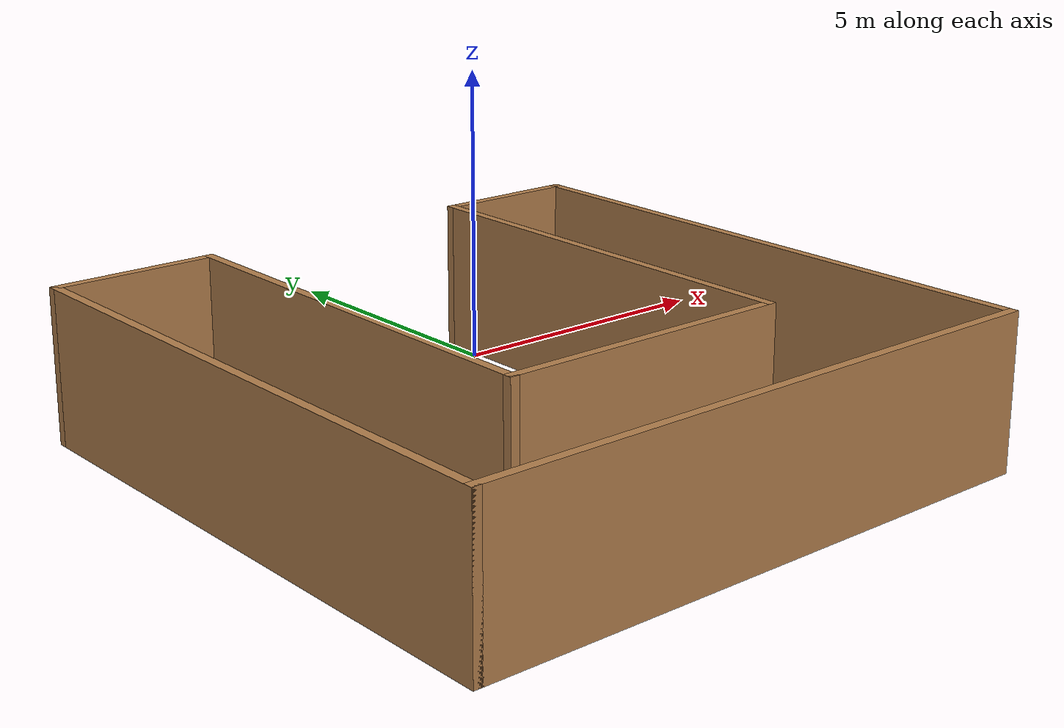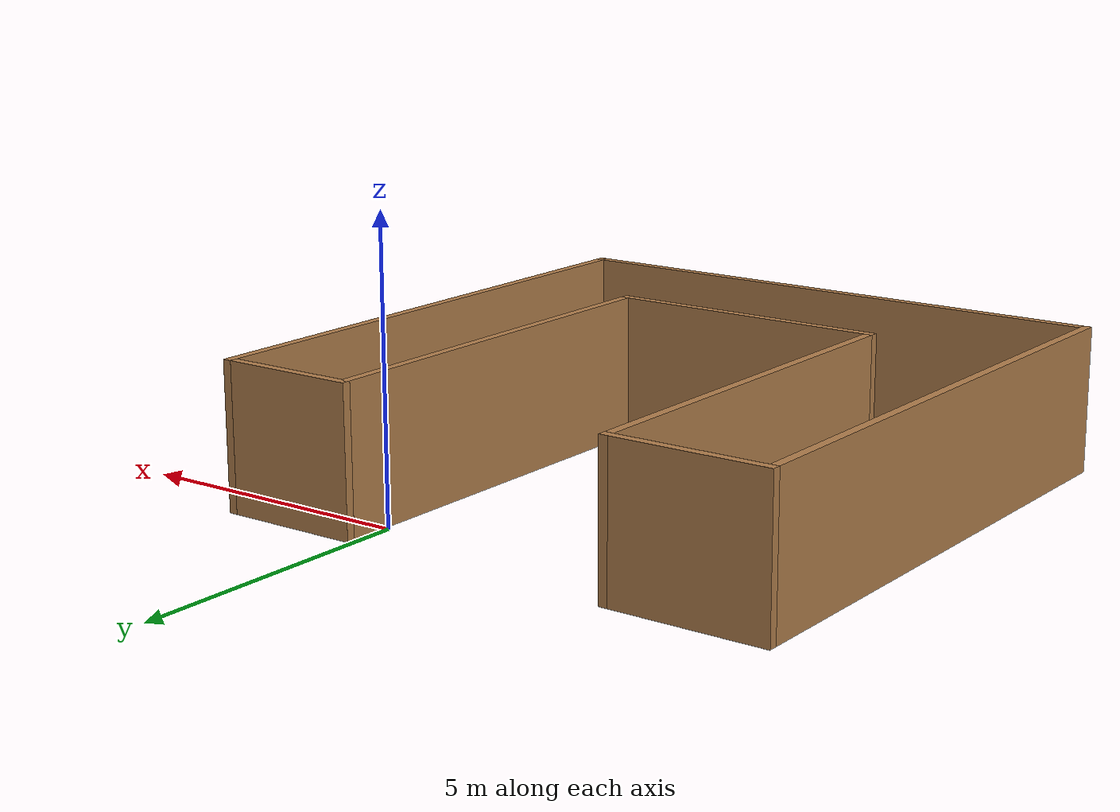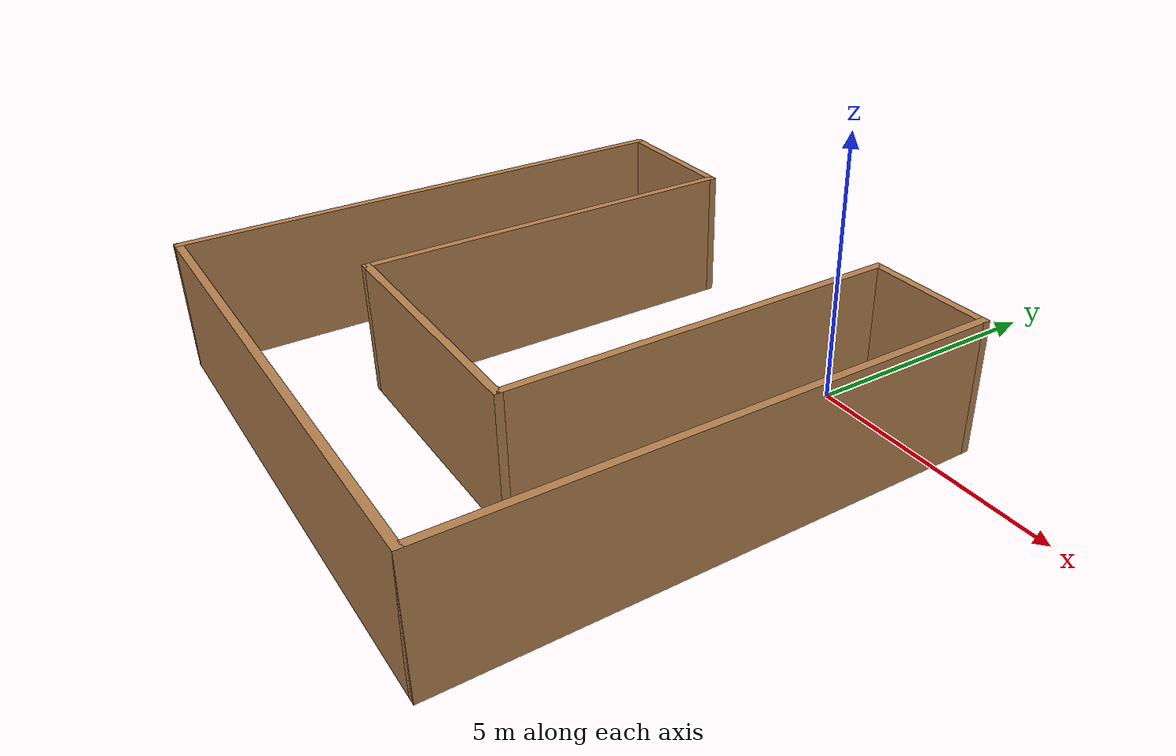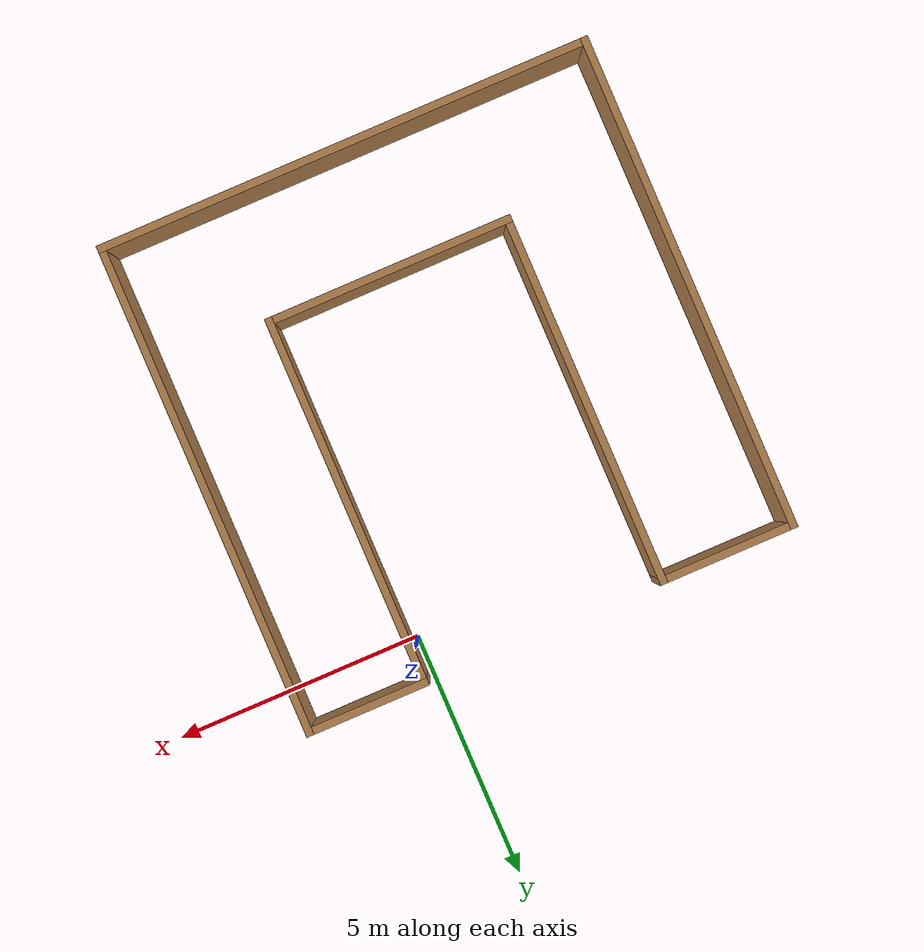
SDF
<?xml version='1.0'?>
<sdf version='1.6'>
  <model name='U-world'>
    <pose frame=''>-2.40806 -4.17008 0 0 -0 0</pose>
    <link name='Wall_0'>
      <collision name='Wall_0_Collision'>
        <geometry>
          <box>
            <size>10 0.15 2.5</size>
          </box>
        </geometry>
        <pose frame=''>0 0 1.25 0 -0 0</pose>
      </collision>
      <visual name='Wall_0_Visual'>
        <pose frame=''>0 0 1.25 0 -0 0</pose>
        <geometry>
          <box>
            <size>10 0.15 2.5</size>
          </box>
        </geometry>
        <material>
          <script>
            <uri>file://media/materials/scripts/gazebo.material</uri>
            <name>Gazebo/Wood</name>
          </script>
          <ambient>0.435294 0.796078 0.67451 1</ambient>
        </material>
        <meta>
          <layer>0</layer>
        </meta>
      </visual>
      <pose frame=''>-4.925 0 0 0 0 -1.5708</pose>
    </link>
    <link name='Wall_1'>
      <collision name='Wall_1_Collision'>
        <geometry>
          <box>
            <size>10 0.15 2.5</size>
          </box>
        </geometry>
        <pose frame=''>0 0 1.25 0 -0 0</pose>
      </collision>
      <visual name='Wall_1_Visual'>
        <pose frame=''>0 0 1.25 0 -0 0</pose>
        <geometry>
          <box>
            <size>10 0.15 2.5</size>
          </box>
        </geometry>
        <material>
          <script>
            <uri>file://media/materials/scripts/gazebo.material</uri>
            <name>Gazebo/Wood</name>
          </script>
          <ambient>0.435294 0.796078 0.67451 1</ambient>
        </material>
        <meta>
          <layer>0</layer>
        </meta>
      </visual>
      <pose frame=''>0 -4.925 0 0 -0 0</pose>
    </link>
    <link name='Wall_2'>
      <collision name='Wall_2_Collision'>
        <geometry>
          <box>
            <size>10 0.15 2.5</size>
          </box>
        </geometry>
        <pose frame=''>0 0 1.25 0 -0 0</pose>
      </collision>
      <visual name='Wall_2_Visual'>
        <pose frame=''>0 0 1.25 0 -0 0</pose>
        <geometry>
          <box>
            <size>10 0.15 2.5</size>
          </box>
        </geometry>
        <material>
          <script>
            <uri>file://media/materials/scripts/gazebo.material</uri>
            <name>Gazebo/Wood</name>
          </script>
          <ambient>0.435294 0.796078 0.67451 1</ambient>
        </material>
        <meta>
          <layer>0</layer>
        </meta>
      </visual>
      <pose frame=''>4.925 0 0 0 -0 1.5708</pose>
    </link>
    <link name='Wall_3'>
      <collision name='Wall_3_Collision'>
        <geometry>
          <box>
            <size>2.5 0.15 2.5</size>
          </box>
        </geometry>
        <pose frame=''>0 0 1.25 0 -0 0</pose>
      </collision>
      <visual name='Wall_3_Visual'>
        <pose frame=''>0 0 1.25 0 -0 0</pose>
        <geometry>
          <box>
            <size>2.5 0.15 2.5</size>
          </box>
        </geometry>
        <material>
          <script>
            <uri>file://media/materials/scripts/gazebo.material</uri>
            <name>Gazebo/Wood</name>
          </script>
          <ambient>0.435294 0.796078 0.67451 1</ambient>
        </material>
        <meta>
          <layer>0</layer>
        </meta>
      </visual>
      <pose frame=''>3.75 4.925 0 0 -0 3.14159</pose>
    </link>
    <link name='Wall_4'>
      <collision name='Wall_4_Collision'>
        <geometry>
          <box>
            <size>7.5 0.15 2.5</size>
          </box>
        </geometry>
        <pose frame=''>0 0 1.25 0 -0 0</pose>
      </collision>
      <visual name='Wall_4_Visual'>
        <pose frame=''>0 0 1.25 0 -0 0</pose>
        <geometry>
          <box>
            <size>7.5 0.15 2.5</size>
          </box>
        </geometry>
        <material>
          <script>
            <uri>file://media/materials/scripts/gazebo.material</uri>
            <name>Gazebo/Wood</name>
          </script>
          <ambient>0.435294 0.796078 0.67451 1</ambient>
        </material>
        <meta>
          <layer>0</layer>
        </meta>
      </visual>
      <pose frame=''>2.575 1.25 0 0 0 -1.5708</pose>
    </link>
    <link name='Wall_5'>
      <collision name='Wall_5_Collision'>
        <geometry>
          <box>
            <size>5 0.15 2.5</size>
          </box>
        </geometry>
        <pose frame=''>0 0 1.25 0 -0 0</pose>
      </collision>
      <visual name='Wall_5_Visual'>
        <pose frame=''>0 0 1.25 0 -0 0</pose>
        <geometry>
          <box>
            <size>5 0.15 2.5</size>
          </box>
        </geometry>
        <material>
          <script>
            <uri>file://media/materials/scripts/gazebo.material</uri>
            <name>Gazebo/Wood</name>
          </script>
          <ambient>0.435294 0.796078 0.67451 1</ambient>
        </material>
        <meta>
          <layer>0</layer>
        </meta>
      </visual>
      <pose frame=''>0.15 -2.425 0 0 -0 3.14159</pose>
    </link>
    <link name='Wall_6'>
      <collision name='Wall_6_Collision'>
        <geometry>
          <box>
            <size>7.5 0.15 2.5</size>
          </box>
        </geometry>
        <pose frame=''>0 0 1.25 0 -0 0</pose>
      </collision>
      <visual name='Wall_6_Visual'>
        <pose frame=''>0 0 1.25 0 -0 0</pose>
        <geometry>
          <box>
            <size>7.5 0.15 2.5</size>
          </box>
        </geometry>
        <material>
          <script>
            <uri>file://media/materials/scripts/gazebo.material</uri>
            <name>Gazebo/Wood</name>
          </script>
          <ambient>0.435294 0.796078 0.67451 1</ambient>
        </material>
        <meta>
          <layer>0</layer>
        </meta>
      </visual>
      <pose frame=''>-2.275 1.25 0 0 -0 1.5708</pose>
    </link>
    <link name='Wall_7'>
      <collision name='Wall_7_Collision'>
        <geometry>
          <box>
            <size>2.8 0.15 2.5</size>
          </box>
        </geometry>
        <pose frame=''>0 0 1.25 0 -0 0</pose>
      </collision>
      <visual name='Wall_7_Visual'>
        <pose frame=''>0 0 1.25 0 -0 0</pose>
        <geometry>
          <box>
            <size>2.8 0.15 2.5</size>
          </box>
        </geometry>
        <material>
          <script>
            <uri>file://media/materials/scripts/gazebo.material</uri>
            <name>Gazebo/Wood</name>
          </script>
          <ambient>0.435294 0.796078 0.67451 1</ambient>
        </material>
        <meta>
          <layer>0</layer>
        </meta>
      </visual>
      <pose frame=''>-3.6 4.925 0 0 -0 3.14159</pose>
    </link>
    <static>1</static>
  </model>
</sdf>
